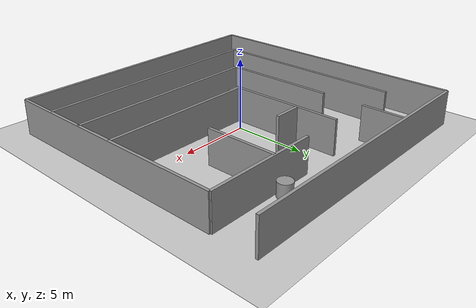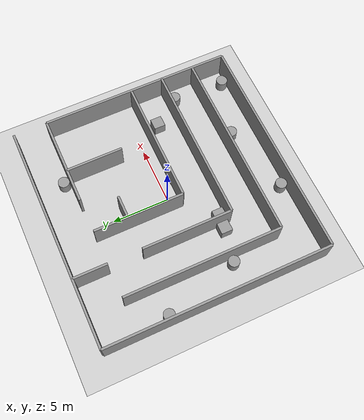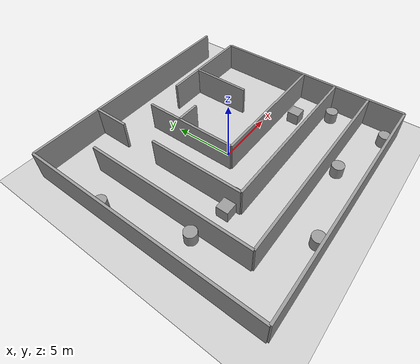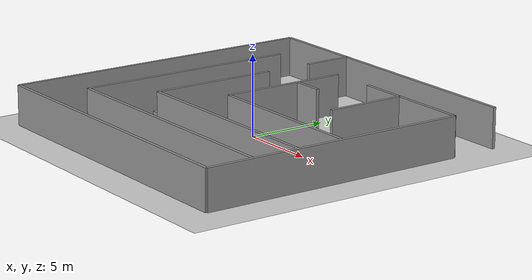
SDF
<sdf version="1.7">
 <world name="default">
  <light name="sun" type="directional">
   <pose>0 0 10 0 -0 0</pose>
   <diffuse>0.8 0.8 0.8 1</diffuse>
   <specular>0.2 0.2 0.2 1</specular>
   <attenuation>
    <range>1000</range>
    <constant>0.9</constant>
    <linear>0.01</linear>
    <quadratic>0.001</quadratic>
   </attenuation>
   <direction>-0.5 0.1 -0.9</direction>
   <spot><inner_angle>0</inner_angle><outer_angle>0</outer_angle><falloff>0</falloff></spot>
  </light>
  <model name="ground_plane">
   <static>1</static>
   <link name="link">
    <collision name="collision">
     <geometry><plane><normal>0 0 1</normal><size>100 100</size></plane></geometry>
     <surface>
      <contact><collide_bitmask>65535</collide_bitmask></contact>
      <friction><ode><mu>100</mu><mu2>50</mu2></ode></friction>
     </surface>
    </collision>
    <visual name="visual">
     <cast_shadows>0</cast_shadows>
     <geometry><plane><normal>0 0 1</normal><size>100 100</size></plane></geometry>
     <material>
      <script><uri>file://media/materials/scripts/gazebo.material</uri><name>Gazebo/Grey</name></script>
     </material>
    </visual>
   </link>
  </model>
  <model name="crazy_maze">
   <static>1</static>
   <link name="Wall_0">
    <pose>-10 -10 0 0 -0 1.5708</pose>
    <collision name="Wall_0_Collision">
     <pose>10 0 1.25 0 -0 0</pose>
     <geometry><box><size>20 0.2 2.5</size></box></geometry>
    </collision>
    <visual name="Wall_0_Visual">
     <pose>10 0 1.25 0 -0 0</pose>
     <geometry><box><size>20 0.2 2.5</size></box></geometry>
     <material>
      <script><uri>file://media/materials/scripts/gazebo.material</uri><name>Gazebo/Grey</name></script>
     </material>
    </visual>
   </link>
   <link name="Wall_1">
    <pose>-10 -10 0 0 -0 0</pose>
    <collision name="Wall_1_Collision">
     <pose>10 0 1.25 0 -0 0</pose>
     <geometry><box><size>20 0.2 2.5</size></box></geometry>
    </collision>
    <visual name="Wall_1_Visual">
     <pose>10 0 1.25 0 -0 0</pose>
     <geometry><box><size>20 0.2 2.5</size></box></geometry>
     <material>
      <script><uri>file://media/materials/scripts/gazebo.material</uri><name>Gazebo/Grey</name></script>
     </material>
    </visual>
   </link>
   <link name="Wall_2">
    <pose>10 -10 0 0 -0 1.5708</pose>
    <collision name="Wall_2_Collision">
     <pose>8.5 0 1.25 0 -0 0</pose>
     <geometry><box><size>17 0.2 2.5</size></box></geometry>
    </collision>
    <visual name="Wall_2_Visual">
     <pose>8.5 0 1.25 0 -0 0</pose>
     <geometry><box><size>17 0.2 2.5</size></box></geometry>
     <material>
      <script><uri>file://media/materials/scripts/gazebo.material</uri><name>Gazebo/Grey</name></script>
     </material>
    </visual>
   </link>
   <link name="Wall_3">
    <pose>-10 10 0 0 -0 0</pose>
    <collision name="Wall_3_Collision">
     <pose>10 0 1.25 0 -0 0</pose>
     <geometry><box><size>20 0.2 2.5</size></box></geometry>
    </collision>
    <visual name="Wall_3_Visual">
     <pose>10 0 1.25 0 -0 0</pose>
     <geometry><box><size>20 0.2 2.5</size></box></geometry>
     <material>
      <script><uri>file://media/materials/scripts/gazebo.material</uri><name>Gazebo/Grey</name></script>
     </material>
    </visual>
   </link>
   <link name="Wall_4">
    <pose>-7 -7 0 0 -0 0</pose>
    <collision name="Wall_4_Collision">
     <pose>8.5 0 1.25 0 -0 0</pose>
     <geometry><box><size>17 0.2 2.5</size></box></geometry>
    </collision>
    <visual name="Wall_4_Visual">
     <pose>8.5 0 1.25 0 -0 0</pose>
     <geometry><box><size>17 0.2 2.5</size></box></geometry>
     <material>
      <script><uri>file://media/materials/scripts/gazebo.material</uri><name>Gazebo/Grey</name></script>
     </material>
    </visual>
   </link>
   <link name="Wall_5">
    <pose>-7 -7 0 0 -0 1.5708</pose>
    <collision name="Wall_5_Collision">
     <pose>7 0 1.25 0 -0 0</pose>
     <geometry><box><size>14 0.2 2.5</size></box></geometry>
    </collision>
    <visual name="Wall_5_Visual">
     <pose>7 0 1.25 0 -0 0</pose>
     <geometry><box><size>14 0.2 2.5</size></box></geometry>
     <material>
      <script><uri>file://media/materials/scripts/gazebo.material</uri><name>Gazebo/Grey</name></script>
     </material>
    </visual>
   </link>
   <link name="Wall_6">
    <pose>-4 -4 0 0 -0 0</pose>
    <collision name="Wall_6_Collision">
     <pose>7 0 1.25 0 -0 0</pose>
     <geometry><box><size>14 0.2 2.5</size></box></geometry>
    </collision>
    <visual name="Wall_6_Visual">
     <pose>7 0 1.25 0 -0 0</pose>
     <geometry><box><size>14 0.2 2.5</size></box></geometry>
     <material>
      <script><uri>file://media/materials/scripts/gazebo.material</uri><name>Gazebo/Grey</name></script>
     </material>
    </visual>
   </link>
   <link name="Wall_7">
    <pose>-4 -4 0 0 -0 1.5708</pose>
    <collision name="Wall_7_Collision">
     <pose>4 0 1.25 0 -0 0</pose>
     <geometry><box><size>8 0.2 2.5</size></box></geometry>
    </collision>
    <visual name="Wall_7_Visual">
     <pose>4 0 1.25 0 -0 0</pose>
     <geometry><box><size>8 0.2 2.5</size></box></geometry>
     <material>
      <script><uri>file://media/materials/scripts/gazebo.material</uri><name>Gazebo/Grey</name></script>
     </material>
    </visual>
   </link>
   <link name="Wall_8">
    <pose>-1 -1 0 0 -0 0</pose>
    <collision name="Wall_8_Collision">
     <pose>5.5 0 1.25 0 -0 0</pose>
     <geometry><box><size>11 0.2 2.5</size></box></geometry>
    </collision>
    <visual name="Wall_8_Visual">
     <pose>5.5 0 1.25 0 -0 0</pose>
     <geometry><box><size>11 0.2 2.5</size></box></geometry>
     <material>
      <script><uri>file://media/materials/scripts/gazebo.material</uri><name>Gazebo/Grey</name></script>
     </material>
    </visual>
   </link>
   <link name="Wall_9">
    <pose>-1 -1 0 0 -0 1.5708</pose>
    <collision name="Wall_9_Collision">
     <pose>4 0 1.25 0 -0 0</pose>
     <geometry><box><size>8 0.2 2.5</size></box></geometry>
    </collision>
    <visual name="Wall_9_Visual">
     <pose>4 0 1.25 0 -0 0</pose>
     <geometry><box><size>8 0.2 2.5</size></box></geometry>
     <material>
      <script><uri>file://media/materials/scripts/gazebo.material</uri><name>Gazebo/Grey</name></script>
     </material>
    </visual>
   </link>
   <link name="Wall_10">
    <pose>-4 7 0 0 -0 1.5708</pose>
    <collision name="Wall_10_Collision">
     <pose>1.5 0 1.25 0 -0 0</pose>
     <geometry><box><size>3 0.2 2.5</size></box></geometry>
    </collision>
    <visual name="Wall_10_Visual">
     <pose>1.5 0 1.25 0 -0 0</pose>
     <geometry><box><size>3 0.2 2.5</size></box></geometry>
     <material>
      <script><uri>file://media/materials/scripts/gazebo.material</uri><name>Gazebo/Grey</name></script>
     </material>
    </visual>
   </link>
   <link name="Wall_11">
    <pose>-1 4 0 0 -0 0</pose>
    <collision name="Wall_11_Collision">
     <pose>1 0 1.25 0 -0 0</pose>
     <geometry><box><size>2 0.2 2.5</size></box></geometry>
    </collision>
    <visual name="Wall_11_Visual">
     <pose>1 0 1.25 0 -0 0</pose>
     <geometry><box><size>2 0.2 2.5</size></box></geometry>
     <material>
      <script><uri>file://media/materials/scripts/gazebo.material</uri><name>Gazebo/Grey</name></script>
     </material>
    </visual>
   </link>
   <link name="Wall_12">
    <pose>2 7 0 0 -0 0</pose>
    <collision name="Wall_12_Collision">
     <pose>4 0 1.25 0 -0 0</pose>
     <geometry><box><size>8 0.2 2.5</size></box></geometry>
    </collision>
    <visual name="Wall_12_Visual">
     <pose>4 0 1.25 0 -0 0</pose>
     <geometry><box><size>8 0.2 2.5</size></box></geometry>
     <material>
      <script><uri>file://media/materials/scripts/gazebo.material</uri><name>Gazebo/Grey</name></script>
     </material>
    </visual>
   </link>
   <link name="Wall_13">
    <pose>5 2 0 0 -0 1.5708</pose>
    <collision name="Wall_13_Collision">
     <pose>2.5 0 1.25 0 -0 0</pose>
     <geometry><box><size>5 0.2 2.5</size></box></geometry>
    </collision>
    <visual name="Wall_13_Visual">
     <pose>2.5 0 1.25 0 -0 0</pose>
     <geometry><box><size>5 0.2 2.5</size></box></geometry>
     <material>
      <script><uri>file://media/materials/scripts/gazebo.material</uri><name>Gazebo/Grey</name></script>
     </material>
    </visual>
   </link>
  </model>
  <gravity>0 0 -9.8</gravity>
  <magnetic_field>6e-06 2.3e-05 -4.2e-05</magnetic_field>
  <atmosphere type="adiabatic"/>
  <physics type="ode">
   <max_step_size>0.001</max_step_size>
   <real_time_factor>1</real_time_factor>
   <real_time_update_rate>1000</real_time_update_rate>
  </physics>
  <scene><ambient>0.4 0.4 0.4 1</ambient><background>0.7 0.7 0.7 1</background><shadows>1</shadows></scene>
  <spherical_coordinates>
   <surface_model>EARTH_WGS84</surface_model>
   <latitude_deg>0</latitude_deg>
   <longitude_deg>0</longitude_deg>
   <elevation>0</elevation>
   <heading_deg>0</heading_deg>
  </spherical_coordinates>
  <model name="unit_box">
   <pose>-3.39997 -3.29621 0.499995 0 1e-05 -3.8e-05</pose>
   <link name="link">
    <inertial>
     <mass>1</mass>
     <inertia>
      <ixx>0.166667</ixx>
      <ixy>0</ixy>
      <ixz>0</ixz>
      <iyy>0.166667</iyy>
      <iyz>0</iyz>
      <izz>0.166667</izz>
     </inertia>
    </inertial>
    <collision name="collision"><geometry><box><size>1 1 1</size></box></geometry></collision>
    <visual name="visual">
     <geometry><box><size>1 1 1</size></box></geometry>
     <material>
      <script><name>Gazebo/Grey</name><uri>file://media/materials/scripts/gazebo.material</uri></script>
     </material>
    </visual>
   </link>
  </model>
  <model name="unit_cylinder">
   <pose>4.78425 7.60001 0.49999 0 -0 0</pose>
   <link name="link">
    <inertial>
     <mass>1</mass>
     <inertia><ixx>0.145833</ixx><ixy>0</ixy><ixz>0</ixz><iyy>0.145833</iyy><iyz>0</iyz><izz>0.125</izz></inertia>
    </inertial>
    <collision name="collision">
     <geometry><cylinder><radius>0.5</radius><length>1</length></cylinder></geometry>
    </collision>
    <visual name="visual">
     <geometry><cylinder><radius>0.5</radius><length>1</length></cylinder></geometry>
     <material>
      <script><name>Gazebo/Grey</name><uri>file://media/materials/scripts/gazebo.material</uri></script>
     </material>
    </visual>
   </link>
  </model>
  <model name="unit_box_0">
   <pose>6.82019 -2.16421 0.499995 -1e-05 -0 -0</pose>
   <link name="link">
    <inertial>
     <mass>1</mass>
     <inertia>
      <ixx>0.166667</ixx>
      <ixy>0</ixy>
      <ixz>0</ixz>
      <iyy>0.166667</iyy>
      <iyz>0</iyz>
      <izz>0.166667</izz>
     </inertia>
    </inertial>
    <collision name="collision"><geometry><box><size>1 1 1</size></box></geometry></collision>
    <visual name="visual">
     <geometry><box><size>1 1 1</size></box></geometry>
     <material>
      <script><name>Gazebo/Grey</name><uri>file://media/materials/scripts/gazebo.material</uri></script>
     </material>
    </visual>
   </link>
  </model>
  <model name="unit_cylinder_0">
   <pose>8.63763 -4.67188 0.499992 -3e-06 4e-06 0</pose>
   <link name="link">
    <inertial>
     <mass>1</mass>
     <inertia><ixx>0.145833</ixx><ixy>0</ixy><ixz>0</ixz><iyy>0.145833</iyy><iyz>0</iyz><izz>0.125</izz></inertia>
    </inertial>
    <collision name="collision">
     <geometry><cylinder><radius>0.5</radius><length>1</length></cylinder></geometry>
    </collision>
    <visual name="visual">
     <geometry><cylinder><radius>0.5</radius><length>1</length></cylinder></geometry>
     <material>
      <script><name>Gazebo/Grey</name><uri>file://media/materials/scripts/gazebo.material</uri></script>
     </material>
    </visual>
   </link>
  </model>
  <model name="unit_cylinder_1">
   <pose>8.47656 -9.39884 0.499973 -5e-06 -4e-06 0.084046</pose>
   <link name="link">
    <inertial>
     <mass>1</mass>
     <inertia><ixx>0.145833</ixx><ixy>0</ixy><ixz>0</ixz><iyy>0.145833</iyy><iyz>0</iyz><izz>0.125</izz></inertia>
    </inertial>
    <collision name="collision">
     <geometry><cylinder><radius>0.5</radius><length>1</length></cylinder></geometry>
    </collision>
    <visual name="visual">
     <geometry><cylinder><radius>0.5</radius><length>1</length></cylinder></geometry>
     <material>
      <script><name>Gazebo/Grey</name><uri>file://media/materials/scripts/gazebo.material</uri></script>
     </material>
    </visual>
   </link>
  </model>
  <model name="unit_cylinder_2">
   <pose>3.30017 -7.77198 0.499992 -3e-06 -4e-06 -0</pose>
   <link name="link">
    <inertial>
     <mass>1</mass>
     <inertia><ixx>0.145833</ixx><ixy>0</ixy><ixz>0</ixz><iyy>0.145833</iyy><iyz>0</iyz><izz>0.125</izz></inertia>
    </inertial>
    <collision name="collision">
     <geometry><cylinder><radius>0.5</radius><length>1</length></cylinder></geometry>
    </collision>
    <visual name="visual">
     <geometry><cylinder><radius>0.5</radius><length>1</length></cylinder></geometry>
     <material>
      <script><name>Gazebo/Grey</name><uri>file://media/materials/scripts/gazebo.material</uri></script>
     </material>
    </visual>
   </link>
  </model>
  <model name="unit_cylinder_3">
   <pose>-3.01838 -9.39999 0.5 0 -0 0</pose>
   <link name="link">
    <inertial>
     <mass>1</mass>
     <inertia><ixx>0.145833</ixx><ixy>0</ixy><ixz>0</ixz><iyy>0.145833</iyy><iyz>0</iyz><izz>0.125</izz></inertia>
    </inertial>
    <collision name="collision">
     <geometry><cylinder><radius>0.5</radius><length>1</length></cylinder></geometry>
    </collision>
    <visual name="visual">
     <geometry><cylinder><radius>0.5</radius><length>1</length></cylinder></geometry>
     <material>
      <script><name>Gazebo/Grey</name><uri>file://media/materials/scripts/gazebo.material</uri></script>
     </material>
    </visual>
   </link>
  </model>
  <model name="unit_box_1">
   <pose>-4.6 -3.18331 0.499995 1e-05 -0 0</pose>
   <link name="link">
    <inertial>
     <mass>1</mass>
     <inertia>
      <ixx>0.166667</ixx>
      <ixy>0</ixy>
      <ixz>0</ixz>
      <iyy>0.166667</iyy>
      <iyz>0</iyz>
      <izz>0.166667</izz>
     </inertia>
    </inertial>
    <collision name="collision"><geometry><box><size>1 1 1</size></box></geometry></collision>
    <visual name="visual">
     <geometry><box><size>1 1 1</size></box></geometry>
     <material>
      <script><name>Gazebo/Grey</name><uri>file://media/materials/scripts/gazebo.material</uri></script>
     </material>
    </visual>
   </link>
  </model>
  <model name="unit_cylinder_4">
   <pose>-9.39999 4.09642 0.5 0 -0 0</pose>
   <link name="link">
    <inertial>
     <mass>1</mass>
     <inertia><ixx>0.145833</ixx><ixy>0</ixy><ixz>0</ixz><iyy>0.145833</iyy><iyz>0</iyz><izz>0.125</izz></inertia>
    </inertial>
    <collision name="collision">
     <geometry><cylinder><radius>0.5</radius><length>1</length></cylinder></geometry>
    </collision>
    <visual name="visual">
     <geometry><cylinder><radius>0.5</radius><length>1</length></cylinder></geometry>
     <material>
      <script><name>Gazebo/Grey</name><uri>file://media/materials/scripts/gazebo.material</uri></script>
     </material>
    </visual>
   </link>
  </model>
  <model name="unit_cylinder_5">
   <pose>-7.60001 -2.53831 0.49999 0 -0 0</pose>
   <link name="link">
    <inertial>
     <mass>1</mass>
     <inertia><ixx>0.145833</ixx><ixy>0</ixy><ixz>0</ixz><iyy>0.145833</iyy><iyz>0</iyz><izz>0.125</izz></inertia>
    </inertial>
    <collision name="collision">
     <geometry><cylinder><radius>0.5</radius><length>1</length></cylinder></geometry>
    </collision>
    <visual name="visual">
     <geometry><cylinder><radius>0.5</radius><length>1</length></cylinder></geometry>
     <material>
      <script><name>Gazebo/Grey</name><uri>file://media/materials/scripts/gazebo.material</uri></script>
     </material>
    </visual>
   </link>
  </model>
 </world>
</sdf>
